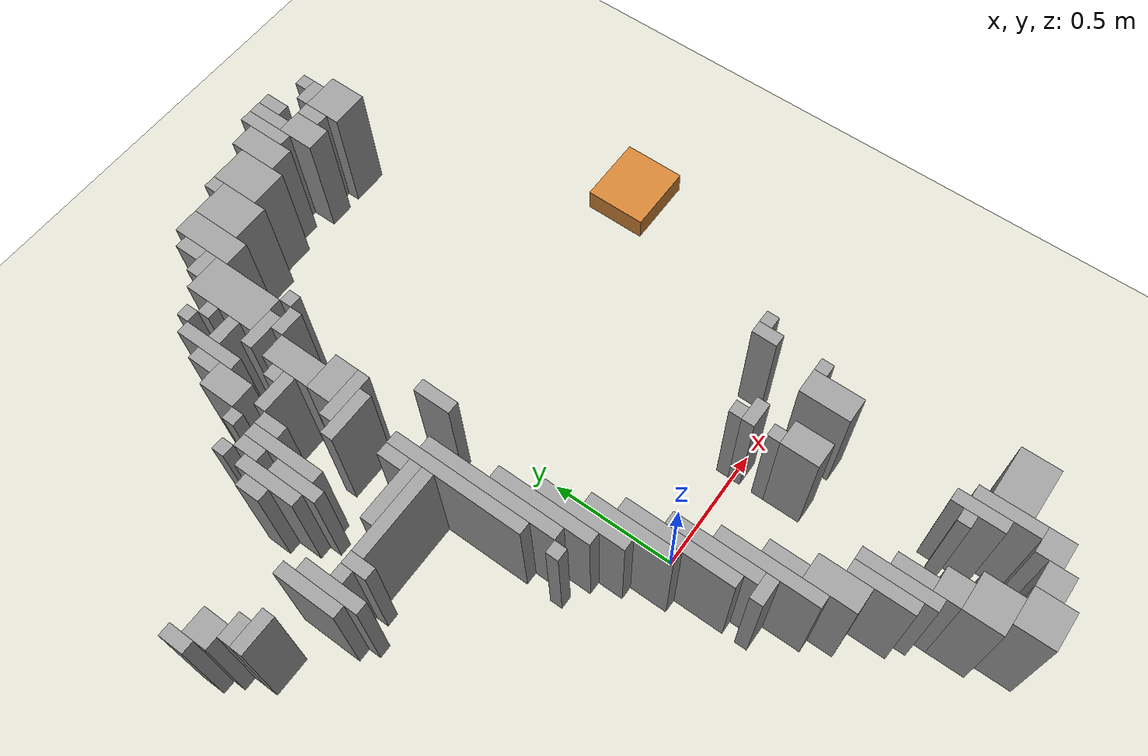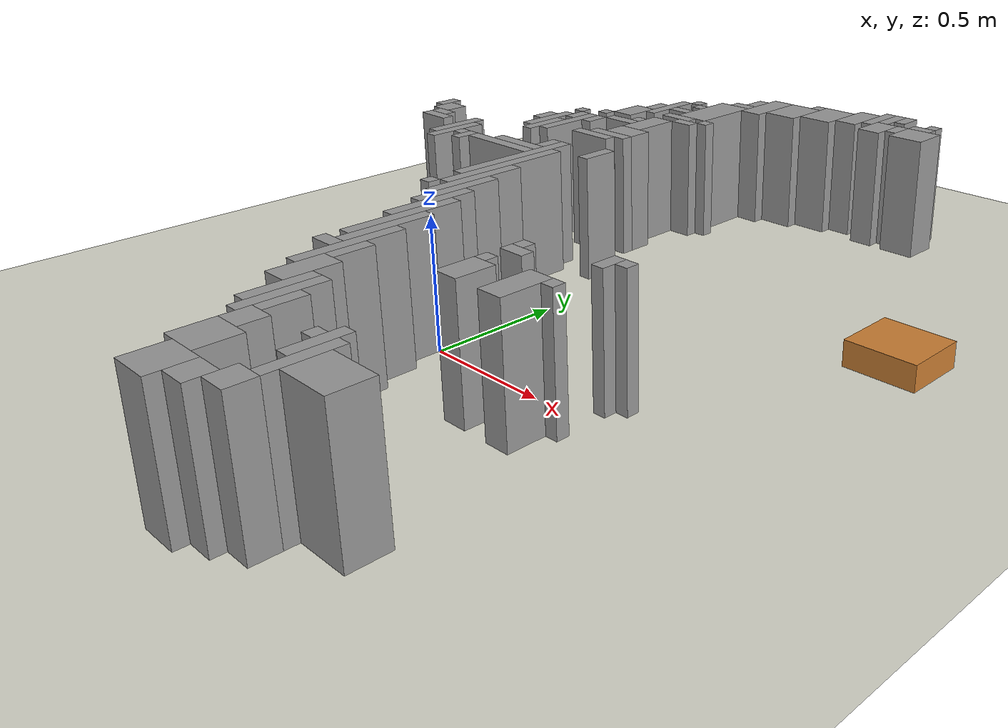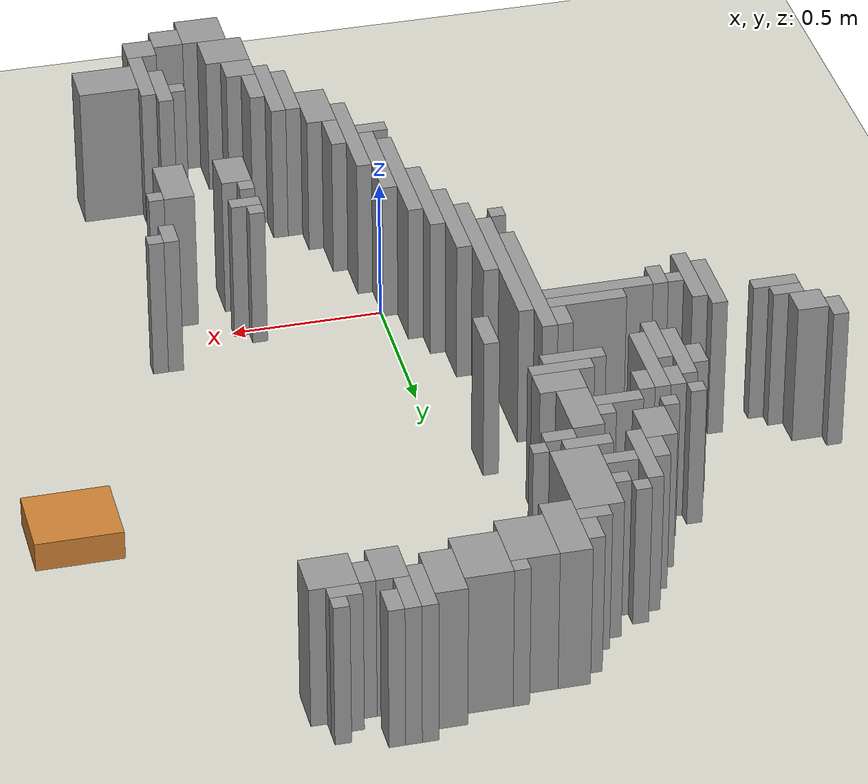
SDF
<sdf version="1.9">
 <world name="jetrover_room">
  <model name="ground_plane">
   <static>true</static>
   <link name="link">
    <collision name="c">
     <geometry><plane><normal>0 0 1</normal><size>20 20</size></plane></geometry>
     <surface><friction><ode><mu>1.0</mu><mu2>1.0</mu2></ode></friction></surface>
    </collision>
    <visual name="v">
     <geometry><plane><normal>0 0 1</normal><size>20 20</size></plane></geometry>
     <material><ambient>0.85 0.85 0.8 1</ambient><diffuse>0.85 0.85 0.8 1</diffuse></material>
    </visual>
   </link>
  </model>
  <model name="walls">
   <static>true</static>
   <link name="w0">
    <pose>0.3710 -1.1090 0.2500 0 0 0</pose>
    <collision name="c"><geometry><box><size>0.1500 0.1500 0.5000</size></box></geometry></collision>
    <visual name="v">
     <geometry><box><size>0.1500 0.1500 0.5000</size></box></geometry>
     <material><ambient>0.6 0.6 0.6 1</ambient><diffuse>0.6 0.6 0.6 1</diffuse></material>
    </visual>
   </link>
   <link name="w1">
    <pose>0.4960 -1.0840 0.2500 0 0 0</pose>
    <collision name="c"><geometry><box><size>0.1000 0.1000 0.5000</size></box></geometry></collision>
    <visual name="v">
     <geometry><box><size>0.1000 0.1000 0.5000</size></box></geometry>
     <material><ambient>0.6 0.6 0.6 1</ambient><diffuse>0.6 0.6 0.6 1</diffuse></material>
    </visual>
   </link>
   <link name="w2">
    <pose>0.5960 -1.0340 0.2500 0 0 0</pose>
    <collision name="c"><geometry><box><size>0.1000 0.1000 0.5000</size></box></geometry></collision>
    <visual name="v">
     <geometry><box><size>0.1000 0.1000 0.5000</size></box></geometry>
     <material><ambient>0.6 0.6 0.6 1</ambient><diffuse>0.6 0.6 0.6 1</diffuse></material>
    </visual>
   </link>
   <link name="w3">
    <pose>0.3210 -0.9590 0.2500 0 0 0</pose>
    <collision name="c"><geometry><box><size>0.1500 0.1500 0.5000</size></box></geometry></collision>
    <visual name="v">
     <geometry><box><size>0.1500 0.1500 0.5000</size></box></geometry>
     <material><ambient>0.6 0.6 0.6 1</ambient><diffuse>0.6 0.6 0.6 1</diffuse></material>
    </visual>
   </link>
   <link name="w4">
    <pose>0.6210 -0.8590 0.2500 0 0 0</pose>
    <collision name="c"><geometry><box><size>0.0500 0.2500 0.5000</size></box></geometry></collision>
    <visual name="v">
     <geometry><box><size>0.0500 0.2500 0.5000</size></box></geometry>
     <material><ambient>0.6 0.6 0.6 1</ambient><diffuse>0.6 0.6 0.6 1</diffuse></material>
    </visual>
   </link>
   <link name="w6">
    <pose>0.7460 -0.8590 0.2500 0 0 0</pose>
    <collision name="c"><geometry><box><size>0.2000 0.1500 0.5000</size></box></geometry></collision>
    <visual name="v">
     <geometry><box><size>0.2000 0.1500 0.5000</size></box></geometry>
     <material><ambient>0.6 0.6 0.6 1</ambient><diffuse>0.6 0.6 0.6 1</diffuse></material>
    </visual>
   </link>
   <link name="w8">
    <pose>0.2960 -0.8340 0.2500 0 0 0</pose>
    <collision name="c"><geometry><box><size>0.1000 0.1000 0.5000</size></box></geometry></collision>
    <visual name="v">
     <geometry><box><size>0.1000 0.1000 0.5000</size></box></geometry>
     <material><ambient>0.6 0.6 0.6 1</ambient><diffuse>0.6 0.6 0.6 1</diffuse></material>
    </visual>
   </link>
   <link name="w9">
    <pose>0.5710 -0.7840 0.2500 0 0 0</pose>
    <collision name="c"><geometry><box><size>0.0500 0.2000 0.5000</size></box></geometry></collision>
    <visual name="v">
     <geometry><box><size>0.0500 0.2000 0.5000</size></box></geometry>
     <material><ambient>0.6 0.6 0.6 1</ambient><diffuse>0.6 0.6 0.6 1</diffuse></material>
    </visual>
   </link>
   <link name="w12">
    <pose>0.2210 -0.6840 0.2500 0 0 0</pose>
    <collision name="c"><geometry><box><size>0.0500 0.3000 0.5000</size></box></geometry></collision>
    <visual name="v">
     <geometry><box><size>0.0500 0.3000 0.5000</size></box></geometry>
     <material><ambient>0.6 0.6 0.6 1</ambient><diffuse>0.6 0.6 0.6 1</diffuse></material>
    </visual>
   </link>
   <link name="w15">
    <pose>0.1710 -0.6590 0.2500 0 0 0</pose>
    <collision name="c"><geometry><box><size>0.0500 0.2500 0.5000</size></box></geometry></collision>
    <visual name="v">
     <geometry><box><size>0.0500 0.2500 0.5000</size></box></geometry>
     <material><ambient>0.6 0.6 0.6 1</ambient><diffuse>0.6 0.6 0.6 1</diffuse></material>
    </visual>
   </link>
   <link name="w16">
    <pose>0.2710 -0.7090 0.2500 0 0 0</pose>
    <collision name="c"><geometry><box><size>0.0500 0.1500 0.5000</size></box></geometry></collision>
    <visual name="v">
     <geometry><box><size>0.0500 0.1500 0.5000</size></box></geometry>
     <material><ambient>0.6 0.6 0.6 1</ambient><diffuse>0.6 0.6 0.6 1</diffuse></material>
    </visual>
   </link>
   <link name="w17">
    <pose>0.5210 -0.7590 0.2500 0 0 0</pose>
    <collision name="c"><geometry><box><size>0.0500 0.0500 0.5000</size></box></geometry></collision>
    <visual name="v">
     <geometry><box><size>0.0500 0.0500 0.5000</size></box></geometry>
     <material><ambient>0.6 0.6 0.6 1</ambient><diffuse>0.6 0.6 0.6 1</diffuse></material>
    </visual>
   </link>
   <link name="w21">
    <pose>0.0960 -0.5340 0.2500 0 0 0</pose>
    <collision name="c"><geometry><box><size>0.1000 0.2000 0.5000</size></box></geometry></collision>
    <visual name="v">
     <geometry><box><size>0.1000 0.2000 0.5000</size></box></geometry>
     <material><ambient>0.6 0.6 0.6 1</ambient><diffuse>0.6 0.6 0.6 1</diffuse></material>
    </visual>
   </link>
   <link name="w24">
    <pose>0.0210 -0.3340 0.2500 0 0 0</pose>
    <collision name="c"><geometry><box><size>0.0500 0.4000 0.5000</size></box></geometry></collision>
    <visual name="v">
     <geometry><box><size>0.0500 0.4000 0.5000</size></box></geometry>
     <material><ambient>0.6 0.6 0.6 1</ambient><diffuse>0.6 0.6 0.6 1</diffuse></material>
    </visual>
   </link>
   <link name="w34">
    <pose>0.0710 -0.3590 0.2500 0 0 0</pose>
    <collision name="c"><geometry><box><size>0.0500 0.1500 0.5000</size></box></geometry></collision>
    <visual name="v">
     <geometry><box><size>0.0500 0.1500 0.5000</size></box></geometry>
     <material><ambient>0.6 0.6 0.6 1</ambient><diffuse>0.6 0.6 0.6 1</diffuse></material>
    </visual>
   </link>
   <link name="w42">
    <pose>-0.0540 -0.3590 0.2500 0 0 0</pose>
    <collision name="c"><geometry><box><size>0.1000 0.0500 0.5000</size></box></geometry></collision>
    <visual name="v">
     <geometry><box><size>0.1000 0.0500 0.5000</size></box></geometry>
     <material><ambient>0.6 0.6 0.6 1</ambient><diffuse>0.6 0.6 0.6 1</diffuse></material>
    </visual>
   </link>
   <link name="w50">
    <pose>-0.0290 -0.1590 0.2500 0 0 0</pose>
    <collision name="c"><geometry><box><size>0.0500 0.3500 0.5000</size></box></geometry></collision>
    <visual name="v">
     <geometry><box><size>0.0500 0.3500 0.5000</size></box></geometry>
     <material><ambient>0.6 0.6 0.6 1</ambient><diffuse>0.6 0.6 0.6 1</diffuse></material>
    </visual>
   </link>
   <link name="w55">
    <pose>-0.0790 -0.0590 0.2500 0 0 0</pose>
    <collision name="c"><geometry><box><size>0.0500 0.4500 0.5000</size></box></geometry></collision>
    <visual name="v">
     <geometry><box><size>0.0500 0.4500 0.5000</size></box></geometry>
     <material><ambient>0.6 0.6 0.6 1</ambient><diffuse>0.6 0.6 0.6 1</diffuse></material>
    </visual>
   </link>
   <link name="w56">
    <pose>0.4460 -0.2090 0.2500 0 0 0</pose>
    <collision name="c"><geometry><box><size>0.1000 0.1500 0.5000</size></box></geometry></collision>
    <visual name="v">
     <geometry><box><size>0.1000 0.1500 0.5000</size></box></geometry>
     <material><ambient>0.6 0.6 0.6 1</ambient><diffuse>0.6 0.6 0.6 1</diffuse></material>
    </visual>
   </link>
   <link name="w57">
    <pose>0.6460 -0.1840 0.2500 0 0 0</pose>
    <collision name="c"><geometry><box><size>0.1000 0.2000 0.5000</size></box></geometry></collision>
    <visual name="v">
     <geometry><box><size>0.1000 0.2000 0.5000</size></box></geometry>
     <material><ambient>0.6 0.6 0.6 1</ambient><diffuse>0.6 0.6 0.6 1</diffuse></material>
    </visual>
   </link>
   <link name="w66">
    <pose>0.4210 -0.1090 0.2500 0 0 0</pose>
    <collision name="c"><geometry><box><size>0.0500 0.0500 0.5000</size></box></geometry></collision>
    <visual name="v">
     <geometry><box><size>0.0500 0.0500 0.5000</size></box></geometry>
     <material><ambient>0.6 0.6 0.6 1</ambient><diffuse>0.6 0.6 0.6 1</diffuse></material>
    </visual>
   </link>
   <link name="w67">
    <pose>0.7210 -0.1090 0.2500 0 0 0</pose>
    <collision name="c"><geometry><box><size>0.0500 0.0500 0.5000</size></box></geometry></collision>
    <visual name="v">
     <geometry><box><size>0.0500 0.0500 0.5000</size></box></geometry>
     <material><ambient>0.6 0.6 0.6 1</ambient><diffuse>0.6 0.6 0.6 1</diffuse></material>
    </visual>
   </link>
   <link name="w69">
    <pose>-0.1290 0.0910 0.2500 0 0 0</pose>
    <collision name="c"><geometry><box><size>0.0500 0.3500 0.5000</size></box></geometry></collision>
    <visual name="v">
     <geometry><box><size>0.0500 0.3500 0.5000</size></box></geometry>
     <material><ambient>0.6 0.6 0.6 1</ambient><diffuse>0.6 0.6 0.6 1</diffuse></material>
    </visual>
   </link>
   <link name="w70">
    <pose>0.4460 -0.0090 0.2500 0 0 0</pose>
    <collision name="c"><geometry><box><size>0.1000 0.0500 0.5000</size></box></geometry></collision>
    <visual name="v">
     <geometry><box><size>0.1000 0.0500 0.5000</size></box></geometry>
     <material><ambient>0.6 0.6 0.6 1</ambient><diffuse>0.6 0.6 0.6 1</diffuse></material>
    </visual>
   </link>
   <link name="w71">
    <pose>0.4210 0.0410 0.2500 0 0 0</pose>
    <collision name="c"><geometry><box><size>0.0500 0.0500 0.5000</size></box></geometry></collision>
    <visual name="v">
     <geometry><box><size>0.0500 0.0500 0.5000</size></box></geometry>
     <material><ambient>0.6 0.6 0.6 1</ambient><diffuse>0.6 0.6 0.6 1</diffuse></material>
    </visual>
   </link>
   <link name="w73">
    <pose>-0.1790 0.2410 0.2500 0 0 0</pose>
    <collision name="c"><geometry><box><size>0.0500 0.3500 0.5000</size></box></geometry></collision>
    <visual name="v">
     <geometry><box><size>0.0500 0.3500 0.5000</size></box></geometry>
     <material><ambient>0.6 0.6 0.6 1</ambient><diffuse>0.6 0.6 0.6 1</diffuse></material>
    </visual>
   </link>
   <link name="w74">
    <pose>0.7210 0.1160 0.2500 0 0 0</pose>
    <collision name="c"><geometry><box><size>0.0500 0.1000 0.5000</size></box></geometry></collision>
    <visual name="v">
     <geometry><box><size>0.0500 0.1000 0.5000</size></box></geometry>
     <material><ambient>0.6 0.6 0.6 1</ambient><diffuse>0.6 0.6 0.6 1</diffuse></material>
    </visual>
   </link>
   <link name="w75">
    <pose>0.7710 0.1410 0.2500 0 0 0</pose>
    <collision name="c"><geometry><box><size>0.0500 0.0500 0.5000</size></box></geometry></collision>
    <visual name="v">
     <geometry><box><size>0.0500 0.0500 0.5000</size></box></geometry>
     <material><ambient>0.6 0.6 0.6 1</ambient><diffuse>0.6 0.6 0.6 1</diffuse></material>
    </visual>
   </link>
   <link name="w77">
    <pose>-0.2290 0.3660 0.2500 0 0 0</pose>
    <collision name="c"><geometry><box><size>0.0500 0.4000 0.5000</size></box></geometry></collision>
    <visual name="v">
     <geometry><box><size>0.0500 0.4000 0.5000</size></box></geometry>
     <material><ambient>0.6 0.6 0.6 1</ambient><diffuse>0.6 0.6 0.6 1</diffuse></material>
    </visual>
   </link>
   <link name="w78">
    <pose>-0.3290 0.2410 0.2500 0 0 0</pose>
    <collision name="c"><geometry><box><size>0.0500 0.0500 0.5000</size></box></geometry></collision>
    <visual name="v">
     <geometry><box><size>0.0500 0.0500 0.5000</size></box></geometry>
     <material><ambient>0.6 0.6 0.6 1</ambient><diffuse>0.6 0.6 0.6 1</diffuse></material>
    </visual>
   </link>
   <link name="w79">
    <pose>-0.2790 0.5410 0.2500 0 0 0</pose>
    <collision name="c"><geometry><box><size>0.0500 0.5500 0.5000</size></box></geometry></collision>
    <visual name="v">
     <geometry><box><size>0.0500 0.5500 0.5000</size></box></geometry>
     <material><ambient>0.6 0.6 0.6 1</ambient><diffuse>0.6 0.6 0.6 1</diffuse></material>
    </visual>
   </link>
   <link name="w81">
    <pose>-0.3290 0.6410 0.2500 0 0 0</pose>
    <collision name="c"><geometry><box><size>0.0500 0.5500 0.5000</size></box></geometry></collision>
    <visual name="v">
     <geometry><box><size>0.0500 0.5500 0.5000</size></box></geometry>
     <material><ambient>0.6 0.6 0.6 1</ambient><diffuse>0.6 0.6 0.6 1</diffuse></material>
    </visual>
   </link>
   <link name="w85">
    <pose>-0.8290 0.7410 0.2500 0 0 0</pose>
    <collision name="c"><geometry><box><size>0.0500 0.2500 0.5000</size></box></geometry></collision>
    <visual name="v">
     <geometry><box><size>0.0500 0.2500 0.5000</size></box></geometry>
     <material><ambient>0.6 0.6 0.6 1</ambient><diffuse>0.6 0.6 0.6 1</diffuse></material>
    </visual>
   </link>
   <link name="w87">
    <pose>-0.8790 0.7910 0.2500 0 0 0</pose>
    <collision name="c"><geometry><box><size>0.0500 0.2500 0.5000</size></box></geometry></collision>
    <visual name="v">
     <geometry><box><size>0.0500 0.2500 0.5000</size></box></geometry>
     <material><ambient>0.6 0.6 0.6 1</ambient><diffuse>0.6 0.6 0.6 1</diffuse></material>
    </visual>
   </link>
   <link name="w88">
    <pose>-0.7290 0.7160 0.2500 0 0 0</pose>
    <collision name="c"><geometry><box><size>0.0500 0.1000 0.5000</size></box></geometry></collision>
    <visual name="v">
     <geometry><box><size>0.0500 0.1000 0.5000</size></box></geometry>
     <material><ambient>0.6 0.6 0.6 1</ambient><diffuse>0.6 0.6 0.6 1</diffuse></material>
    </visual>
   </link>
   <link name="w90">
    <pose>-0.7790 0.7410 0.2500 0 0 0</pose>
    <collision name="c"><geometry><box><size>0.0500 0.0500 0.5000</size></box></geometry></collision>
    <visual name="v">
     <geometry><box><size>0.0500 0.0500 0.5000</size></box></geometry>
     <material><ambient>0.6 0.6 0.6 1</ambient><diffuse>0.6 0.6 0.6 1</diffuse></material>
    </visual>
   </link>
   <link name="w91">
    <pose>-0.5290 0.7410 0.2500 0 0 0</pose>
    <collision name="c"><geometry><box><size>0.3500 0.0500 0.5000</size></box></geometry></collision>
    <visual name="v">
     <geometry><box><size>0.3500 0.0500 0.5000</size></box></geometry>
     <material><ambient>0.6 0.6 0.6 1</ambient><diffuse>0.6 0.6 0.6 1</diffuse></material>
    </visual>
   </link>
   <link name="w95">
    <pose>-0.4790 0.7910 0.2500 0 0 0</pose>
    <collision name="c"><geometry><box><size>0.2500 0.0500 0.5000</size></box></geometry></collision>
    <visual name="v">
     <geometry><box><size>0.2500 0.0500 0.5000</size></box></geometry>
     <material><ambient>0.6 0.6 0.6 1</ambient><diffuse>0.6 0.6 0.6 1</diffuse></material>
    </visual>
   </link>
   <link name="w100">
    <pose>-1.0790 0.8410 0.2500 0 0 0</pose>
    <collision name="c"><geometry><box><size>0.1500 0.0500 0.5000</size></box></geometry></collision>
    <visual name="v">
     <geometry><box><size>0.1500 0.0500 0.5000</size></box></geometry>
     <material><ambient>0.6 0.6 0.6 1</ambient><diffuse>0.6 0.6 0.6 1</diffuse></material>
    </visual>
   </link>
   <link name="w101">
    <pose>-0.3790 0.8660 0.2500 0 0 0</pose>
    <collision name="c"><geometry><box><size>0.0500 0.1000 0.5000</size></box></geometry></collision>
    <visual name="v">
     <geometry><box><size>0.0500 0.1000 0.5000</size></box></geometry>
     <material><ambient>0.6 0.6 0.6 1</ambient><diffuse>0.6 0.6 0.6 1</diffuse></material>
    </visual>
   </link>
   <link name="w102">
    <pose>-0.1290 0.8910 0.2500 0 0 0</pose>
    <collision name="c"><geometry><box><size>0.0500 0.1500 0.5000</size></box></geometry></collision>
    <visual name="v">
     <geometry><box><size>0.0500 0.1500 0.5000</size></box></geometry>
     <material><ambient>0.6 0.6 0.6 1</ambient><diffuse>0.6 0.6 0.6 1</diffuse></material>
    </visual>
   </link>
   <link name="w105">
    <pose>-1.1040 0.8910 0.2500 0 0 0</pose>
    <collision name="c"><geometry><box><size>0.1000 0.0500 0.5000</size></box></geometry></collision>
    <visual name="v">
     <geometry><box><size>0.1000 0.0500 0.5000</size></box></geometry>
     <material><ambient>0.6 0.6 0.6 1</ambient><diffuse>0.6 0.6 0.6 1</diffuse></material>
    </visual>
   </link>
   <link name="w107">
    <pose>-1.1540 0.9660 0.2500 0 0 0</pose>
    <collision name="c"><geometry><box><size>0.1000 0.1000 0.5000</size></box></geometry></collision>
    <visual name="v">
     <geometry><box><size>0.1000 0.1000 0.5000</size></box></geometry>
     <material><ambient>0.6 0.6 0.6 1</ambient><diffuse>0.6 0.6 0.6 1</diffuse></material>
    </visual>
   </link>
   <link name="w109">
    <pose>-1.2290 1.0160 0.2500 0 0 0</pose>
    <collision name="c"><geometry><box><size>0.0500 0.1000 0.5000</size></box></geometry></collision>
    <visual name="v">
     <geometry><box><size>0.0500 0.1000 0.5000</size></box></geometry>
     <material><ambient>0.6 0.6 0.6 1</ambient><diffuse>0.6 0.6 0.6 1</diffuse></material>
    </visual>
   </link>
   <link name="w110">
    <pose>-0.6290 1.0660 0.2500 0 0 0</pose>
    <collision name="c"><geometry><box><size>0.0500 0.2000 0.5000</size></box></geometry></collision>
    <visual name="v">
     <geometry><box><size>0.0500 0.2000 0.5000</size></box></geometry>
     <material><ambient>0.6 0.6 0.6 1</ambient><diffuse>0.6 0.6 0.6 1</diffuse></material>
    </visual>
   </link>
   <link name="w111">
    <pose>-0.6790 1.1410 0.2500 0 0 0</pose>
    <collision name="c"><geometry><box><size>0.0500 0.2500 0.5000</size></box></geometry></collision>
    <visual name="v">
     <geometry><box><size>0.0500 0.2500 0.5000</size></box></geometry>
     <material><ambient>0.6 0.6 0.6 1</ambient><diffuse>0.6 0.6 0.6 1</diffuse></material>
    </visual>
   </link>
   <link name="w112">
    <pose>-0.5790 1.1660 0.2500 0 0 0</pose>
    <collision name="c"><geometry><box><size>0.0500 0.3000 0.5000</size></box></geometry></collision>
    <visual name="v">
     <geometry><box><size>0.0500 0.3000 0.5000</size></box></geometry>
     <material><ambient>0.6 0.6 0.6 1</ambient><diffuse>0.6 0.6 0.6 1</diffuse></material>
    </visual>
   </link>
   <link name="w113">
    <pose>-0.3540 1.0910 0.2500 0 0 0</pose>
    <collision name="c"><geometry><box><size>0.2000 0.0500 0.5000</size></box></geometry></collision>
    <visual name="v">
     <geometry><box><size>0.2000 0.0500 0.5000</size></box></geometry>
     <material><ambient>0.6 0.6 0.6 1</ambient><diffuse>0.6 0.6 0.6 1</diffuse></material>
    </visual>
   </link>
   <link name="w115">
    <pose>-0.7290 1.1660 0.2500 0 0 0</pose>
    <collision name="c"><geometry><box><size>0.0500 0.1000 0.5000</size></box></geometry></collision>
    <visual name="v">
     <geometry><box><size>0.0500 0.1000 0.5000</size></box></geometry>
     <material><ambient>0.6 0.6 0.6 1</ambient><diffuse>0.6 0.6 0.6 1</diffuse></material>
    </visual>
   </link>
   <link name="w116">
    <pose>-0.3040 1.1410 0.2500 0 0 0</pose>
    <collision name="c"><geometry><box><size>0.2000 0.0500 0.5000</size></box></geometry></collision>
    <visual name="v">
     <geometry><box><size>0.2000 0.0500 0.5000</size></box></geometry>
     <material><ambient>0.6 0.6 0.6 1</ambient><diffuse>0.6 0.6 0.6 1</diffuse></material>
    </visual>
   </link>
   <link name="w117">
    <pose>-0.2790 1.2160 0.2500 0 0 0</pose>
    <collision name="c"><geometry><box><size>0.1500 0.1000 0.5000</size></box></geometry></collision>
    <visual name="v">
     <geometry><box><size>0.1500 0.1000 0.5000</size></box></geometry>
     <material><ambient>0.6 0.6 0.6 1</ambient><diffuse>0.6 0.6 0.6 1</diffuse></material>
    </visual>
   </link>
   <link name="w119">
    <pose>-0.6290 1.2660 0.2500 0 0 0</pose>
    <collision name="c"><geometry><box><size>0.0500 0.1000 0.5000</size></box></geometry></collision>
    <visual name="v">
     <geometry><box><size>0.0500 0.1000 0.5000</size></box></geometry>
     <material><ambient>0.6 0.6 0.6 1</ambient><diffuse>0.6 0.6 0.6 1</diffuse></material>
    </visual>
   </link>
   <link name="w120">
    <pose>-0.5290 1.2660 0.2500 0 0 0</pose>
    <collision name="c"><geometry><box><size>0.0500 0.1000 0.5000</size></box></geometry></collision>
    <visual name="v">
     <geometry><box><size>0.0500 0.1000 0.5000</size></box></geometry>
     <material><ambient>0.6 0.6 0.6 1</ambient><diffuse>0.6 0.6 0.6 1</diffuse></material>
    </visual>
   </link>
   <link name="w121">
    <pose>-0.3040 1.3660 0.2500 0 0 0</pose>
    <collision name="c"><geometry><box><size>0.1000 0.2000 0.5000</size></box></geometry></collision>
    <visual name="v">
     <geometry><box><size>0.1000 0.2000 0.5000</size></box></geometry>
     <material><ambient>0.6 0.6 0.6 1</ambient><diffuse>0.6 0.6 0.6 1</diffuse></material>
    </visual>
   </link>
   <link name="w122">
    <pose>-0.6790 1.3410 0.2500 0 0 0</pose>
    <collision name="c"><geometry><box><size>0.0500 0.0500 0.5000</size></box></geometry></collision>
    <visual name="v">
     <geometry><box><size>0.0500 0.0500 0.5000</size></box></geometry>
     <material><ambient>0.6 0.6 0.6 1</ambient><diffuse>0.6 0.6 0.6 1</diffuse></material>
    </visual>
   </link>
   <link name="w123">
    <pose>-0.4290 1.3410 0.2500 0 0 0</pose>
    <collision name="c"><geometry><box><size>0.1500 0.0500 0.5000</size></box></geometry></collision>
    <visual name="v">
     <geometry><box><size>0.1500 0.0500 0.5000</size></box></geometry>
     <material><ambient>0.6 0.6 0.6 1</ambient><diffuse>0.6 0.6 0.6 1</diffuse></material>
    </visual>
   </link>
   <link name="w125">
    <pose>-0.5790 1.3910 0.2500 0 0 0</pose>
    <collision name="c"><geometry><box><size>0.0500 0.0500 0.5000</size></box></geometry></collision>
    <visual name="v">
     <geometry><box><size>0.0500 0.0500 0.5000</size></box></geometry>
     <material><ambient>0.6 0.6 0.6 1</ambient><diffuse>0.6 0.6 0.6 1</diffuse></material>
    </visual>
   </link>
   <link name="w126">
    <pose>-0.3790 1.3910 0.2500 0 0 0</pose>
    <collision name="c"><geometry><box><size>0.0500 0.0500 0.5000</size></box></geometry></collision>
    <visual name="v">
     <geometry><box><size>0.0500 0.0500 0.5000</size></box></geometry>
     <material><ambient>0.6 0.6 0.6 1</ambient><diffuse>0.6 0.6 0.6 1</diffuse></material>
    </visual>
   </link>
   <link name="w127">
    <pose>-0.5040 1.4910 0.2500 0 0 0</pose>
    <collision name="c"><geometry><box><size>0.1000 0.1500 0.5000</size></box></geometry></collision>
    <visual name="v">
     <geometry><box><size>0.1000 0.1500 0.5000</size></box></geometry>
     <material><ambient>0.6 0.6 0.6 1</ambient><diffuse>0.6 0.6 0.6 1</diffuse></material>
    </visual>
   </link>
   <link name="w128">
    <pose>-0.2040 1.4910 0.2500 0 0 0</pose>
    <collision name="c"><geometry><box><size>0.1000 0.0500 0.5000</size></box></geometry></collision>
    <visual name="v">
     <geometry><box><size>0.1000 0.0500 0.5000</size></box></geometry>
     <material><ambient>0.6 0.6 0.6 1</ambient><diffuse>0.6 0.6 0.6 1</diffuse></material>
    </visual>
   </link>
   <link name="w130">
    <pose>-0.4290 1.6410 0.2500 0 0 0</pose>
    <collision name="c"><geometry><box><size>0.0500 0.2500 0.5000</size></box></geometry></collision>
    <visual name="v">
     <geometry><box><size>0.0500 0.2500 0.5000</size></box></geometry>
     <material><ambient>0.6 0.6 0.6 1</ambient><diffuse>0.6 0.6 0.6 1</diffuse></material>
    </visual>
   </link>
   <link name="w131">
    <pose>-0.2790 1.5410 0.2500 0 0 0</pose>
    <collision name="c"><geometry><box><size>0.1500 0.0500 0.5000</size></box></geometry></collision>
    <visual name="v">
     <geometry><box><size>0.1500 0.0500 0.5000</size></box></geometry>
     <material><ambient>0.6 0.6 0.6 1</ambient><diffuse>0.6 0.6 0.6 1</diffuse></material>
    </visual>
   </link>
   <link name="w132">
    <pose>-0.1290 1.5410 0.2500 0 0 0</pose>
    <collision name="c"><geometry><box><size>0.0500 0.0500 0.5000</size></box></geometry></collision>
    <visual name="v">
     <geometry><box><size>0.0500 0.0500 0.5000</size></box></geometry>
     <material><ambient>0.6 0.6 0.6 1</ambient><diffuse>0.6 0.6 0.6 1</diffuse></material>
    </visual>
   </link>
   <link name="w133">
    <pose>-0.4790 1.6160 0.2500 0 0 0</pose>
    <collision name="c"><geometry><box><size>0.0500 0.1000 0.5000</size></box></geometry></collision>
    <visual name="v">
     <geometry><box><size>0.0500 0.1000 0.5000</size></box></geometry>
     <material><ambient>0.6 0.6 0.6 1</ambient><diffuse>0.6 0.6 0.6 1</diffuse></material>
    </visual>
   </link>
   <link name="w134">
    <pose>-0.2290 1.7160 0.2500 0 0 0</pose>
    <collision name="c"><geometry><box><size>0.1500 0.3000 0.5000</size></box></geometry></collision>
    <visual name="v">
     <geometry><box><size>0.1500 0.3000 0.5000</size></box></geometry>
     <material><ambient>0.6 0.6 0.6 1</ambient><diffuse>0.6 0.6 0.6 1</diffuse></material>
    </visual>
   </link>
   <link name="w136">
    <pose>-0.3540 1.6410 0.2500 0 0 0</pose>
    <collision name="c"><geometry><box><size>0.1000 0.0500 0.5000</size></box></geometry></collision>
    <visual name="v">
     <geometry><box><size>0.1000 0.0500 0.5000</size></box></geometry>
     <material><ambient>0.6 0.6 0.6 1</ambient><diffuse>0.6 0.6 0.6 1</diffuse></material>
    </visual>
   </link>
   <link name="w137">
    <pose>-0.3290 1.7410 0.2500 0 0 0</pose>
    <collision name="c"><geometry><box><size>0.0500 0.0500 0.5000</size></box></geometry></collision>
    <visual name="v">
     <geometry><box><size>0.0500 0.0500 0.5000</size></box></geometry>
     <material><ambient>0.6 0.6 0.6 1</ambient><diffuse>0.6 0.6 0.6 1</diffuse></material>
    </visual>
   </link>
   <link name="w138">
    <pose>-0.3790 1.7910 0.2500 0 0 0</pose>
    <collision name="c"><geometry><box><size>0.0500 0.0500 0.5000</size></box></geometry></collision>
    <visual name="v">
     <geometry><box><size>0.0500 0.0500 0.5000</size></box></geometry>
     <material><ambient>0.6 0.6 0.6 1</ambient><diffuse>0.6 0.6 0.6 1</diffuse></material>
    </visual>
   </link>
   <link name="w140">
    <pose>-0.1040 1.9410 0.2500 0 0 0</pose>
    <collision name="c"><geometry><box><size>0.1000 0.2500 0.5000</size></box></geometry></collision>
    <visual name="v">
     <geometry><box><size>0.1000 0.2500 0.5000</size></box></geometry>
     <material><ambient>0.6 0.6 0.6 1</ambient><diffuse>0.6 0.6 0.6 1</diffuse></material>
    </visual>
   </link>
   <link name="w142">
    <pose>-0.2040 1.8910 0.2500 0 0 0</pose>
    <collision name="c"><geometry><box><size>0.1000 0.0500 0.5000</size></box></geometry></collision>
    <visual name="v">
     <geometry><box><size>0.1000 0.0500 0.5000</size></box></geometry>
     <material><ambient>0.6 0.6 0.6 1</ambient><diffuse>0.6 0.6 0.6 1</diffuse></material>
    </visual>
   </link>
   <link name="w143">
    <pose>0.0210 1.9660 0.2500 0 0 0</pose>
    <collision name="c"><geometry><box><size>0.1500 0.2000 0.5000</size></box></geometry></collision>
    <visual name="v">
     <geometry><box><size>0.1500 0.2000 0.5000</size></box></geometry>
     <material><ambient>0.6 0.6 0.6 1</ambient><diffuse>0.6 0.6 0.6 1</diffuse></material>
    </visual>
   </link>
   <link name="w145">
    <pose>-0.1790 1.9660 0.2500 0 0 0</pose>
    <collision name="c"><geometry><box><size>0.0500 0.1000 0.5000</size></box></geometry></collision>
    <visual name="v">
     <geometry><box><size>0.0500 0.1000 0.5000</size></box></geometry>
     <material><ambient>0.6 0.6 0.6 1</ambient><diffuse>0.6 0.6 0.6 1</diffuse></material>
    </visual>
   </link>
   <link name="w146">
    <pose>0.1710 2.0160 0.2500 0 0 0</pose>
    <collision name="c"><geometry><box><size>0.1500 0.2000 0.5000</size></box></geometry></collision>
    <visual name="v">
     <geometry><box><size>0.1500 0.2000 0.5000</size></box></geometry>
     <material><ambient>0.6 0.6 0.6 1</ambient><diffuse>0.6 0.6 0.6 1</diffuse></material>
    </visual>
   </link>
   <link name="w147">
    <pose>0.4460 1.9910 0.2500 0 0 0</pose>
    <collision name="c"><geometry><box><size>0.1000 0.1500 0.5000</size></box></geometry></collision>
    <visual name="v">
     <geometry><box><size>0.1000 0.1500 0.5000</size></box></geometry>
     <material><ambient>0.6 0.6 0.6 1</ambient><diffuse>0.6 0.6 0.6 1</diffuse></material>
    </visual>
   </link>
   <link name="w148">
    <pose>0.6210 1.9910 0.2500 0 0 0</pose>
    <collision name="c"><geometry><box><size>0.1500 0.1500 0.5000</size></box></geometry></collision>
    <visual name="v">
     <geometry><box><size>0.1500 0.1500 0.5000</size></box></geometry>
     <material><ambient>0.6 0.6 0.6 1</ambient><diffuse>0.6 0.6 0.6 1</diffuse></material>
    </visual>
   </link>
   <link name="w149">
    <pose>0.2960 2.0660 0.2500 0 0 0</pose>
    <collision name="c"><geometry><box><size>0.1000 0.2000 0.5000</size></box></geometry></collision>
    <visual name="v">
     <geometry><box><size>0.1000 0.2000 0.5000</size></box></geometry>
     <material><ambient>0.6 0.6 0.6 1</ambient><diffuse>0.6 0.6 0.6 1</diffuse></material>
    </visual>
   </link>
   <link name="w150">
    <pose>0.5210 2.0160 0.2500 0 0 0</pose>
    <collision name="c"><geometry><box><size>0.0500 0.1000 0.5000</size></box></geometry></collision>
    <visual name="v">
     <geometry><box><size>0.0500 0.1000 0.5000</size></box></geometry>
     <material><ambient>0.6 0.6 0.6 1</ambient><diffuse>0.6 0.6 0.6 1</diffuse></material>
    </visual>
   </link>
   <link name="w154">
    <pose>0.3710 2.1160 0.2500 0 0 0</pose>
    <collision name="c"><geometry><box><size>0.0500 0.2000 0.5000</size></box></geometry></collision>
    <visual name="v">
     <geometry><box><size>0.0500 0.2000 0.5000</size></box></geometry>
     <material><ambient>0.6 0.6 0.6 1</ambient><diffuse>0.6 0.6 0.6 1</diffuse></material>
    </visual>
   </link>
   <link name="w157">
    <pose>0.0710 2.0910 0.2500 0 0 0</pose>
    <collision name="c"><geometry><box><size>0.0500 0.0500 0.5000</size></box></geometry></collision>
    <visual name="v">
     <geometry><box><size>0.0500 0.0500 0.5000</size></box></geometry>
     <material><ambient>0.6 0.6 0.6 1</ambient><diffuse>0.6 0.6 0.6 1</diffuse></material>
    </visual>
   </link>
   <link name="w158">
    <pose>0.4210 2.1410 0.2500 0 0 0</pose>
    <collision name="c"><geometry><box><size>0.0500 0.1500 0.5000</size></box></geometry></collision>
    <visual name="v">
     <geometry><box><size>0.0500 0.1500 0.5000</size></box></geometry>
     <material><ambient>0.6 0.6 0.6 1</ambient><diffuse>0.6 0.6 0.6 1</diffuse></material>
    </visual>
   </link>
   <link name="w159">
    <pose>0.5960 2.0910 0.2500 0 0 0</pose>
    <collision name="c"><geometry><box><size>0.1000 0.0500 0.5000</size></box></geometry></collision>
    <visual name="v">
     <geometry><box><size>0.1000 0.0500 0.5000</size></box></geometry>
     <material><ambient>0.6 0.6 0.6 1</ambient><diffuse>0.6 0.6 0.6 1</diffuse></material>
    </visual>
   </link>
   <link name="w161">
    <pose>0.4710 2.1660 0.2500 0 0 0</pose>
    <collision name="c"><geometry><box><size>0.0500 0.1000 0.5000</size></box></geometry></collision>
    <visual name="v">
     <geometry><box><size>0.0500 0.1000 0.5000</size></box></geometry>
     <material><ambient>0.6 0.6 0.6 1</ambient><diffuse>0.6 0.6 0.6 1</diffuse></material>
    </visual>
   </link>
   <link name="w162">
    <pose>0.6210 2.1410 0.2500 0 0 0</pose>
    <collision name="c"><geometry><box><size>0.0500 0.0500 0.5000</size></box></geometry></collision>
    <visual name="v">
     <geometry><box><size>0.0500 0.0500 0.5000</size></box></geometry>
     <material><ambient>0.6 0.6 0.6 1</ambient><diffuse>0.6 0.6 0.6 1</diffuse></material>
    </visual>
   </link>
  </model>
  <model name="obstacle_0">
   <static>true</static>
   <link name="body">
    <pose>1.2100 1.0000 0.0500 0 0 0</pose>
    <collision name="c"><geometry><box><size>0.2800 0.2500 0.1000</size></box></geometry></collision>
    <visual name="v">
     <geometry><box><size>0.2800 0.2500 0.1000</size></box></geometry>
     <material><ambient>0.8 0.5 0.2 1</ambient><diffuse>0.8 0.5 0.2 1</diffuse></material>
    </visual>
   </link>
  </model>
 </world>
</sdf>
